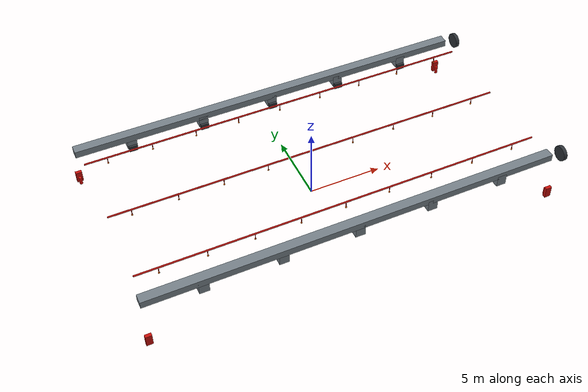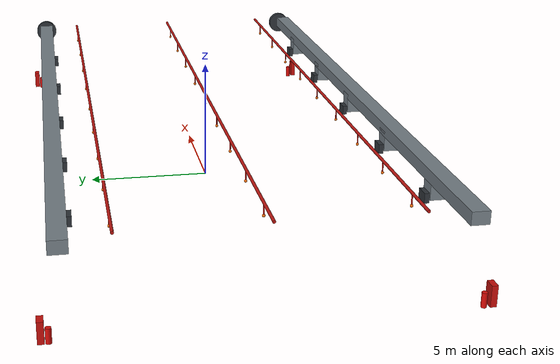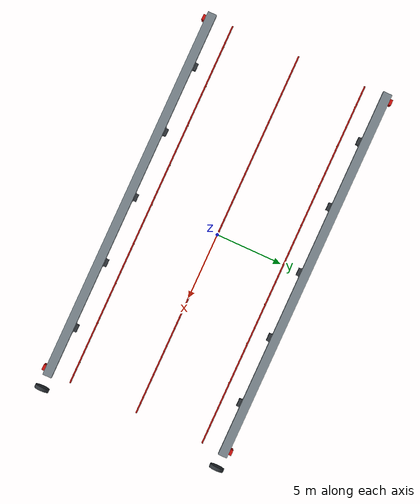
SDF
<sdf version="1.7">
 <world name="ev_car_carrier_deck_world">
  <model name="ventilation_system">
   <static>true</static>
   <link name="link">
    <collision name="main_duct_-6.65_collision">
     <pose>0.0000 -6.6500 3.4800 0.0000 0.0000 0.0000</pose>
     <geometry><box><size>27.5 0.65 0.48</size></box></geometry>
    </collision>
    <visual name="main_duct_-6.65_visual">
     <pose>0.0000 -6.6500 3.4800 0.0000 0.0000 0.0000</pose>
     <geometry><box><size>27.5 0.65 0.48</size></box></geometry>
     <material><ambient>0.46 0.5 0.53 1</ambient><diffuse>0.46 0.5 0.53 1</diffuse></material>
    </visual>
    <collision name="drop_duct_-10_-6.65_collision">
     <pose>-10.0000 -6.6500 3.0500 0.0000 0.0000 0.0000</pose>
     <geometry><box><size>0.65 0.65 0.8</size></box></geometry>
    </collision>
    <visual name="drop_duct_-10_-6.65_visual">
     <pose>-10.0000 -6.6500 3.0500 0.0000 0.0000 0.0000</pose>
     <geometry><box><size>0.65 0.65 0.8</size></box></geometry>
     <material><ambient>0.46 0.5 0.53 1</ambient><diffuse>0.46 0.5 0.53 1</diffuse></material>
    </visual>
    <visual name="vent_grille_-10_-6.65_visual">
     <pose>-10.0000 -6.2300 2.7200 0.0000 0.0000 0.0000</pose>
     <geometry><box><size>0.55 0.18 0.38</size></box></geometry>
     <material><ambient>0.18 0.2 0.22 1</ambient><diffuse>0.18 0.2 0.22 1</diffuse></material>
    </visual>
    <collision name="drop_duct_-5_-6.65_collision">
     <pose>-5.0000 -6.6500 3.0500 0.0000 0.0000 0.0000</pose>
     <geometry><box><size>0.65 0.65 0.8</size></box></geometry>
    </collision>
    <visual name="drop_duct_-5_-6.65_visual">
     <pose>-5.0000 -6.6500 3.0500 0.0000 0.0000 0.0000</pose>
     <geometry><box><size>0.65 0.65 0.8</size></box></geometry>
     <material><ambient>0.46 0.5 0.53 1</ambient><diffuse>0.46 0.5 0.53 1</diffuse></material>
    </visual>
    <visual name="vent_grille_-5_-6.65_visual">
     <pose>-5.0000 -6.2300 2.7200 0.0000 0.0000 0.0000</pose>
     <geometry><box><size>0.55 0.18 0.38</size></box></geometry>
     <material><ambient>0.18 0.2 0.22 1</ambient><diffuse>0.18 0.2 0.22 1</diffuse></material>
    </visual>
    <collision name="drop_duct_0_-6.65_collision">
     <pose>0.0000 -6.6500 3.0500 0.0000 0.0000 0.0000</pose>
     <geometry><box><size>0.65 0.65 0.8</size></box></geometry>
    </collision>
    <visual name="drop_duct_0_-6.65_visual">
     <pose>0.0000 -6.6500 3.0500 0.0000 0.0000 0.0000</pose>
     <geometry><box><size>0.65 0.65 0.8</size></box></geometry>
     <material><ambient>0.46 0.5 0.53 1</ambient><diffuse>0.46 0.5 0.53 1</diffuse></material>
    </visual>
    <visual name="vent_grille_0_-6.65_visual">
     <pose>0.0000 -6.2300 2.7200 0.0000 0.0000 0.0000</pose>
     <geometry><box><size>0.55 0.18 0.38</size></box></geometry>
     <material><ambient>0.18 0.2 0.22 1</ambient><diffuse>0.18 0.2 0.22 1</diffuse></material>
    </visual>
    <collision name="drop_duct_5_-6.65_collision">
     <pose>5.0000 -6.6500 3.0500 0.0000 0.0000 0.0000</pose>
     <geometry><box><size>0.65 0.65 0.8</size></box></geometry>
    </collision>
    <visual name="drop_duct_5_-6.65_visual">
     <pose>5.0000 -6.6500 3.0500 0.0000 0.0000 0.0000</pose>
     <geometry><box><size>0.65 0.65 0.8</size></box></geometry>
     <material><ambient>0.46 0.5 0.53 1</ambient><diffuse>0.46 0.5 0.53 1</diffuse></material>
    </visual>
    <visual name="vent_grille_5_-6.65_visual">
     <pose>5.0000 -6.2300 2.7200 0.0000 0.0000 0.0000</pose>
     <geometry><box><size>0.55 0.18 0.38</size></box></geometry>
     <material><ambient>0.18 0.2 0.22 1</ambient><diffuse>0.18 0.2 0.22 1</diffuse></material>
    </visual>
    <collision name="drop_duct_10_-6.65_collision">
     <pose>10.0000 -6.6500 3.0500 0.0000 0.0000 0.0000</pose>
     <geometry><box><size>0.65 0.65 0.8</size></box></geometry>
    </collision>
    <visual name="drop_duct_10_-6.65_visual">
     <pose>10.0000 -6.6500 3.0500 0.0000 0.0000 0.0000</pose>
     <geometry><box><size>0.65 0.65 0.8</size></box></geometry>
     <material><ambient>0.46 0.5 0.53 1</ambient><diffuse>0.46 0.5 0.53 1</diffuse></material>
    </visual>
    <visual name="vent_grille_10_-6.65_visual">
     <pose>10.0000 -6.2300 2.7200 0.0000 0.0000 0.0000</pose>
     <geometry><box><size>0.55 0.18 0.38</size></box></geometry>
     <material><ambient>0.18 0.2 0.22 1</ambient><diffuse>0.18 0.2 0.22 1</diffuse></material>
    </visual>
    <collision name="main_duct_6.65_collision">
     <pose>0.0000 6.6500 3.4800 0.0000 0.0000 0.0000</pose>
     <geometry><box><size>27.5 0.65 0.48</size></box></geometry>
    </collision>
    <visual name="main_duct_6.65_visual">
     <pose>0.0000 6.6500 3.4800 0.0000 0.0000 0.0000</pose>
     <geometry><box><size>27.5 0.65 0.48</size></box></geometry>
     <material><ambient>0.46 0.5 0.53 1</ambient><diffuse>0.46 0.5 0.53 1</diffuse></material>
    </visual>
    <collision name="drop_duct_-10_6.65_collision">
     <pose>-10.0000 6.6500 3.0500 0.0000 0.0000 0.0000</pose>
     <geometry><box><size>0.65 0.65 0.8</size></box></geometry>
    </collision>
    <visual name="drop_duct_-10_6.65_visual">
     <pose>-10.0000 6.6500 3.0500 0.0000 0.0000 0.0000</pose>
     <geometry><box><size>0.65 0.65 0.8</size></box></geometry>
     <material><ambient>0.46 0.5 0.53 1</ambient><diffuse>0.46 0.5 0.53 1</diffuse></material>
    </visual>
    <visual name="vent_grille_-10_6.65_visual">
     <pose>-10.0000 6.2300 2.7200 0.0000 0.0000 0.0000</pose>
     <geometry><box><size>0.55 0.18 0.38</size></box></geometry>
     <material><ambient>0.18 0.2 0.22 1</ambient><diffuse>0.18 0.2 0.22 1</diffuse></material>
    </visual>
    <collision name="drop_duct_-5_6.65_collision">
     <pose>-5.0000 6.6500 3.0500 0.0000 0.0000 0.0000</pose>
     <geometry><box><size>0.65 0.65 0.8</size></box></geometry>
    </collision>
    <visual name="drop_duct_-5_6.65_visual">
     <pose>-5.0000 6.6500 3.0500 0.0000 0.0000 0.0000</pose>
     <geometry><box><size>0.65 0.65 0.8</size></box></geometry>
     <material><ambient>0.46 0.5 0.53 1</ambient><diffuse>0.46 0.5 0.53 1</diffuse></material>
    </visual>
    <visual name="vent_grille_-5_6.65_visual">
     <pose>-5.0000 6.2300 2.7200 0.0000 0.0000 0.0000</pose>
     <geometry><box><size>0.55 0.18 0.38</size></box></geometry>
     <material><ambient>0.18 0.2 0.22 1</ambient><diffuse>0.18 0.2 0.22 1</diffuse></material>
    </visual>
    <collision name="drop_duct_0_6.65_collision">
     <pose>0.0000 6.6500 3.0500 0.0000 0.0000 0.0000</pose>
     <geometry><box><size>0.65 0.65 0.8</size></box></geometry>
    </collision>
    <visual name="drop_duct_0_6.65_visual">
     <pose>0.0000 6.6500 3.0500 0.0000 0.0000 0.0000</pose>
     <geometry><box><size>0.65 0.65 0.8</size></box></geometry>
     <material><ambient>0.46 0.5 0.53 1</ambient><diffuse>0.46 0.5 0.53 1</diffuse></material>
    </visual>
    <visual name="vent_grille_0_6.65_visual">
     <pose>0.0000 6.2300 2.7200 0.0000 0.0000 0.0000</pose>
     <geometry><box><size>0.55 0.18 0.38</size></box></geometry>
     <material><ambient>0.18 0.2 0.22 1</ambient><diffuse>0.18 0.2 0.22 1</diffuse></material>
    </visual>
    <collision name="drop_duct_5_6.65_collision">
     <pose>5.0000 6.6500 3.0500 0.0000 0.0000 0.0000</pose>
     <geometry><box><size>0.65 0.65 0.8</size></box></geometry>
    </collision>
    <visual name="drop_duct_5_6.65_visual">
     <pose>5.0000 6.6500 3.0500 0.0000 0.0000 0.0000</pose>
     <geometry><box><size>0.65 0.65 0.8</size></box></geometry>
     <material><ambient>0.46 0.5 0.53 1</ambient><diffuse>0.46 0.5 0.53 1</diffuse></material>
    </visual>
    <visual name="vent_grille_5_6.65_visual">
     <pose>5.0000 6.2300 2.7200 0.0000 0.0000 0.0000</pose>
     <geometry><box><size>0.55 0.18 0.38</size></box></geometry>
     <material><ambient>0.18 0.2 0.22 1</ambient><diffuse>0.18 0.2 0.22 1</diffuse></material>
    </visual>
    <collision name="drop_duct_10_6.65_collision">
     <pose>10.0000 6.6500 3.0500 0.0000 0.0000 0.0000</pose>
     <geometry><box><size>0.65 0.65 0.8</size></box></geometry>
    </collision>
    <visual name="drop_duct_10_6.65_visual">
     <pose>10.0000 6.6500 3.0500 0.0000 0.0000 0.0000</pose>
     <geometry><box><size>0.65 0.65 0.8</size></box></geometry>
     <material><ambient>0.46 0.5 0.53 1</ambient><diffuse>0.46 0.5 0.53 1</diffuse></material>
    </visual>
    <visual name="vent_grille_10_6.65_visual">
     <pose>10.0000 6.2300 2.7200 0.0000 0.0000 0.0000</pose>
     <geometry><box><size>0.55 0.18 0.38</size></box></geometry>
     <material><ambient>0.18 0.2 0.22 1</ambient><diffuse>0.18 0.2 0.22 1</diffuse></material>
    </visual>
    <collision name="extract_fan_-6.65_collision">
     <pose>14.7200 -6.6500 3.2200 0.0000 1.5708 0.0000</pose>
     <geometry><cylinder><radius>0.52</radius><length>0.25</length></cylinder></geometry>
    </collision>
    <visual name="extract_fan_-6.65_visual">
     <pose>14.7200 -6.6500 3.2200 0.0000 1.5708 0.0000</pose>
     <geometry><cylinder><radius>0.52</radius><length>0.25</length></cylinder></geometry>
     <material><ambient>0.18 0.2 0.22 1</ambient><diffuse>0.18 0.2 0.22 1</diffuse></material>
    </visual>
    <collision name="extract_fan_6.65_collision">
     <pose>14.7200 6.6500 3.2200 0.0000 1.5708 0.0000</pose>
     <geometry><cylinder><radius>0.52</radius><length>0.25</length></cylinder></geometry>
    </collision>
    <visual name="extract_fan_6.65_visual">
     <pose>14.7200 6.6500 3.2200 0.0000 1.5708 0.0000</pose>
     <geometry><cylinder><radius>0.52</radius><length>0.25</length></cylinder></geometry>
     <material><ambient>0.18 0.2 0.22 1</ambient><diffuse>0.18 0.2 0.22 1</diffuse></material>
    </visual>
   </link>
  </model>
  <model name="fire_suppression">
   <static>true</static>
   <link name="link">
    <collision name="fire_main_-5.0_collision">
     <pose>0.0000 -5.0000 3.7200 0.0000 1.5708 0.0000</pose>
     <geometry><cylinder><radius>0.055</radius><length>27.0</length></cylinder></geometry>
    </collision>
    <visual name="fire_main_-5.0_visual">
     <pose>0.0000 -5.0000 3.7200 0.0000 1.5708 0.0000</pose>
     <geometry><cylinder><radius>0.055</radius><length>27.0</length></cylinder></geometry>
     <material><ambient>0.72 0.08 0.06 1</ambient><diffuse>0.72 0.08 0.06 1</diffuse></material>
    </visual>
    <collision name="drop_-12_-5.0_collision">
     <pose>-12.0000 -5.0000 3.4800 0.0000 0.0000 0.0000</pose>
     <geometry><cylinder><radius>0.024</radius><length>0.35</length></cylinder></geometry>
    </collision>
    <visual name="drop_-12_-5.0_visual">
     <pose>-12.0000 -5.0000 3.4800 0.0000 0.0000 0.0000</pose>
     <geometry><cylinder><radius>0.024</radius><length>0.35</length></cylinder></geometry>
     <material><ambient>0.72 0.08 0.06 1</ambient><diffuse>0.72 0.08 0.06 1</diffuse></material>
    </visual>
    <visual name="mist_nozzle_-12_-5.0_visual">
     <pose>-12.0000 -5.0000 3.2700 0.0000 0.0000 0.0000</pose>
     <geometry><sphere><radius>0.055</radius></sphere></geometry>
     <material><ambient>0.92 0.42 0.06 1</ambient><diffuse>0.92 0.42 0.06 1</diffuse></material>
    </visual>
    <collision name="drop_-9_-5.0_collision">
     <pose>-9.0000 -5.0000 3.4800 0.0000 0.0000 0.0000</pose>
     <geometry><cylinder><radius>0.024</radius><length>0.35</length></cylinder></geometry>
    </collision>
    <visual name="drop_-9_-5.0_visual">
     <pose>-9.0000 -5.0000 3.4800 0.0000 0.0000 0.0000</pose>
     <geometry><cylinder><radius>0.024</radius><length>0.35</length></cylinder></geometry>
     <material><ambient>0.72 0.08 0.06 1</ambient><diffuse>0.72 0.08 0.06 1</diffuse></material>
    </visual>
    <visual name="mist_nozzle_-9_-5.0_visual">
     <pose>-9.0000 -5.0000 3.2700 0.0000 0.0000 0.0000</pose>
     <geometry><sphere><radius>0.055</radius></sphere></geometry>
     <material><ambient>0.92 0.42 0.06 1</ambient><diffuse>0.92 0.42 0.06 1</diffuse></material>
    </visual>
    <collision name="drop_-6_-5.0_collision">
     <pose>-6.0000 -5.0000 3.4800 0.0000 0.0000 0.0000</pose>
     <geometry><cylinder><radius>0.024</radius><length>0.35</length></cylinder></geometry>
    </collision>
    <visual name="drop_-6_-5.0_visual">
     <pose>-6.0000 -5.0000 3.4800 0.0000 0.0000 0.0000</pose>
     <geometry><cylinder><radius>0.024</radius><length>0.35</length></cylinder></geometry>
     <material><ambient>0.72 0.08 0.06 1</ambient><diffuse>0.72 0.08 0.06 1</diffuse></material>
    </visual>
    <visual name="mist_nozzle_-6_-5.0_visual">
     <pose>-6.0000 -5.0000 3.2700 0.0000 0.0000 0.0000</pose>
     <geometry><sphere><radius>0.055</radius></sphere></geometry>
     <material><ambient>0.92 0.42 0.06 1</ambient><diffuse>0.92 0.42 0.06 1</diffuse></material>
    </visual>
    <collision name="drop_-3_-5.0_collision">
     <pose>-3.0000 -5.0000 3.4800 0.0000 0.0000 0.0000</pose>
     <geometry><cylinder><radius>0.024</radius><length>0.35</length></cylinder></geometry>
    </collision>
    <visual name="drop_-3_-5.0_visual">
     <pose>-3.0000 -5.0000 3.4800 0.0000 0.0000 0.0000</pose>
     <geometry><cylinder><radius>0.024</radius><length>0.35</length></cylinder></geometry>
     <material><ambient>0.72 0.08 0.06 1</ambient><diffuse>0.72 0.08 0.06 1</diffuse></material>
    </visual>
    <visual name="mist_nozzle_-3_-5.0_visual">
     <pose>-3.0000 -5.0000 3.2700 0.0000 0.0000 0.0000</pose>
     <geometry><sphere><radius>0.055</radius></sphere></geometry>
     <material><ambient>0.92 0.42 0.06 1</ambient><diffuse>0.92 0.42 0.06 1</diffuse></material>
    </visual>
    <collision name="drop_0_-5.0_collision">
     <pose>0.0000 -5.0000 3.4800 0.0000 0.0000 0.0000</pose>
     <geometry><cylinder><radius>0.024</radius><length>0.35</length></cylinder></geometry>
    </collision>
    <visual name="drop_0_-5.0_visual">
     <pose>0.0000 -5.0000 3.4800 0.0000 0.0000 0.0000</pose>
     <geometry><cylinder><radius>0.024</radius><length>0.35</length></cylinder></geometry>
     <material><ambient>0.72 0.08 0.06 1</ambient><diffuse>0.72 0.08 0.06 1</diffuse></material>
    </visual>
    <visual name="mist_nozzle_0_-5.0_visual">
     <pose>0.0000 -5.0000 3.2700 0.0000 0.0000 0.0000</pose>
     <geometry><sphere><radius>0.055</radius></sphere></geometry>
     <material><ambient>0.92 0.42 0.06 1</ambient><diffuse>0.92 0.42 0.06 1</diffuse></material>
    </visual>
    <collision name="drop_3_-5.0_collision">
     <pose>3.0000 -5.0000 3.4800 0.0000 0.0000 0.0000</pose>
     <geometry><cylinder><radius>0.024</radius><length>0.35</length></cylinder></geometry>
    </collision>
    <visual name="drop_3_-5.0_visual">
     <pose>3.0000 -5.0000 3.4800 0.0000 0.0000 0.0000</pose>
     <geometry><cylinder><radius>0.024</radius><length>0.35</length></cylinder></geometry>
     <material><ambient>0.72 0.08 0.06 1</ambient><diffuse>0.72 0.08 0.06 1</diffuse></material>
    </visual>
    <visual name="mist_nozzle_3_-5.0_visual">
     <pose>3.0000 -5.0000 3.2700 0.0000 0.0000 0.0000</pose>
     <geometry><sphere><radius>0.055</radius></sphere></geometry>
     <material><ambient>0.92 0.42 0.06 1</ambient><diffuse>0.92 0.42 0.06 1</diffuse></material>
    </visual>
    <collision name="drop_6_-5.0_collision">
     <pose>6.0000 -5.0000 3.4800 0.0000 0.0000 0.0000</pose>
     <geometry><cylinder><radius>0.024</radius><length>0.35</length></cylinder></geometry>
    </collision>
    <visual name="drop_6_-5.0_visual">
     <pose>6.0000 -5.0000 3.4800 0.0000 0.0000 0.0000</pose>
     <geometry><cylinder><radius>0.024</radius><length>0.35</length></cylinder></geometry>
     <material><ambient>0.72 0.08 0.06 1</ambient><diffuse>0.72 0.08 0.06 1</diffuse></material>
    </visual>
    <visual name="mist_nozzle_6_-5.0_visual">
     <pose>6.0000 -5.0000 3.2700 0.0000 0.0000 0.0000</pose>
     <geometry><sphere><radius>0.055</radius></sphere></geometry>
     <material><ambient>0.92 0.42 0.06 1</ambient><diffuse>0.92 0.42 0.06 1</diffuse></material>
    </visual>
    <collision name="drop_9_-5.0_collision">
     <pose>9.0000 -5.0000 3.4800 0.0000 0.0000 0.0000</pose>
     <geometry><cylinder><radius>0.024</radius><length>0.35</length></cylinder></geometry>
    </collision>
    <visual name="drop_9_-5.0_visual">
     <pose>9.0000 -5.0000 3.4800 0.0000 0.0000 0.0000</pose>
     <geometry><cylinder><radius>0.024</radius><length>0.35</length></cylinder></geometry>
     <material><ambient>0.72 0.08 0.06 1</ambient><diffuse>0.72 0.08 0.06 1</diffuse></material>
    </visual>
    <visual name="mist_nozzle_9_-5.0_visual">
     <pose>9.0000 -5.0000 3.2700 0.0000 0.0000 0.0000</pose>
     <geometry><sphere><radius>0.055</radius></sphere></geometry>
     <material><ambient>0.92 0.42 0.06 1</ambient><diffuse>0.92 0.42 0.06 1</diffuse></material>
    </visual>
    <collision name="drop_12_-5.0_collision">
     <pose>12.0000 -5.0000 3.4800 0.0000 0.0000 0.0000</pose>
     <geometry><cylinder><radius>0.024</radius><length>0.35</length></cylinder></geometry>
    </collision>
    <visual name="drop_12_-5.0_visual">
     <pose>12.0000 -5.0000 3.4800 0.0000 0.0000 0.0000</pose>
     <geometry><cylinder><radius>0.024</radius><length>0.35</length></cylinder></geometry>
     <material><ambient>0.72 0.08 0.06 1</ambient><diffuse>0.72 0.08 0.06 1</diffuse></material>
    </visual>
    <visual name="mist_nozzle_12_-5.0_visual">
     <pose>12.0000 -5.0000 3.2700 0.0000 0.0000 0.0000</pose>
     <geometry><sphere><radius>0.055</radius></sphere></geometry>
     <material><ambient>0.92 0.42 0.06 1</ambient><diffuse>0.92 0.42 0.06 1</diffuse></material>
    </visual>
    <collision name="fire_main_0_collision">
     <pose>0.0000 0.0000 3.7200 0.0000 1.5708 0.0000</pose>
     <geometry><cylinder><radius>0.055</radius><length>27.0</length></cylinder></geometry>
    </collision>
    <visual name="fire_main_0_visual">
     <pose>0.0000 0.0000 3.7200 0.0000 1.5708 0.0000</pose>
     <geometry><cylinder><radius>0.055</radius><length>27.0</length></cylinder></geometry>
     <material><ambient>0.72 0.08 0.06 1</ambient><diffuse>0.72 0.08 0.06 1</diffuse></material>
    </visual>
    <collision name="drop_-12_0_collision">
     <pose>-12.0000 0.0000 3.4800 0.0000 0.0000 0.0000</pose>
     <geometry><cylinder><radius>0.024</radius><length>0.35</length></cylinder></geometry>
    </collision>
    <visual name="drop_-12_0_visual">
     <pose>-12.0000 0.0000 3.4800 0.0000 0.0000 0.0000</pose>
     <geometry><cylinder><radius>0.024</radius><length>0.35</length></cylinder></geometry>
     <material><ambient>0.72 0.08 0.06 1</ambient><diffuse>0.72 0.08 0.06 1</diffuse></material>
    </visual>
    <visual name="mist_nozzle_-12_0_visual">
     <pose>-12.0000 0.0000 3.2700 0.0000 0.0000 0.0000</pose>
     <geometry><sphere><radius>0.055</radius></sphere></geometry>
     <material><ambient>0.92 0.42 0.06 1</ambient><diffuse>0.92 0.42 0.06 1</diffuse></material>
    </visual>
    <collision name="drop_-9_0_collision">
     <pose>-9.0000 0.0000 3.4800 0.0000 0.0000 0.0000</pose>
     <geometry><cylinder><radius>0.024</radius><length>0.35</length></cylinder></geometry>
    </collision>
    <visual name="drop_-9_0_visual">
     <pose>-9.0000 0.0000 3.4800 0.0000 0.0000 0.0000</pose>
     <geometry><cylinder><radius>0.024</radius><length>0.35</length></cylinder></geometry>
     <material><ambient>0.72 0.08 0.06 1</ambient><diffuse>0.72 0.08 0.06 1</diffuse></material>
    </visual>
    <visual name="mist_nozzle_-9_0_visual">
     <pose>-9.0000 0.0000 3.2700 0.0000 0.0000 0.0000</pose>
     <geometry><sphere><radius>0.055</radius></sphere></geometry>
     <material><ambient>0.92 0.42 0.06 1</ambient><diffuse>0.92 0.42 0.06 1</diffuse></material>
    </visual>
    <collision name="drop_-6_0_collision">
     <pose>-6.0000 0.0000 3.4800 0.0000 0.0000 0.0000</pose>
     <geometry><cylinder><radius>0.024</radius><length>0.35</length></cylinder></geometry>
    </collision>
    <visual name="drop_-6_0_visual">
     <pose>-6.0000 0.0000 3.4800 0.0000 0.0000 0.0000</pose>
     <geometry><cylinder><radius>0.024</radius><length>0.35</length></cylinder></geometry>
     <material><ambient>0.72 0.08 0.06 1</ambient><diffuse>0.72 0.08 0.06 1</diffuse></material>
    </visual>
    <visual name="mist_nozzle_-6_0_visual">
     <pose>-6.0000 0.0000 3.2700 0.0000 0.0000 0.0000</pose>
     <geometry><sphere><radius>0.055</radius></sphere></geometry>
     <material><ambient>0.92 0.42 0.06 1</ambient><diffuse>0.92 0.42 0.06 1</diffuse></material>
    </visual>
    <collision name="drop_-3_0_collision">
     <pose>-3.0000 0.0000 3.4800 0.0000 0.0000 0.0000</pose>
     <geometry><cylinder><radius>0.024</radius><length>0.35</length></cylinder></geometry>
    </collision>
    <visual name="drop_-3_0_visual">
     <pose>-3.0000 0.0000 3.4800 0.0000 0.0000 0.0000</pose>
     <geometry><cylinder><radius>0.024</radius><length>0.35</length></cylinder></geometry>
     <material><ambient>0.72 0.08 0.06 1</ambient><diffuse>0.72 0.08 0.06 1</diffuse></material>
    </visual>
    <visual name="mist_nozzle_-3_0_visual">
     <pose>-3.0000 0.0000 3.2700 0.0000 0.0000 0.0000</pose>
     <geometry><sphere><radius>0.055</radius></sphere></geometry>
     <material><ambient>0.92 0.42 0.06 1</ambient><diffuse>0.92 0.42 0.06 1</diffuse></material>
    </visual>
    <collision name="drop_0_0_collision">
     <pose>0.0000 0.0000 3.4800 0.0000 0.0000 0.0000</pose>
     <geometry><cylinder><radius>0.024</radius><length>0.35</length></cylinder></geometry>
    </collision>
    <visual name="drop_0_0_visual">
     <pose>0.0000 0.0000 3.4800 0.0000 0.0000 0.0000</pose>
     <geometry><cylinder><radius>0.024</radius><length>0.35</length></cylinder></geometry>
     <material><ambient>0.72 0.08 0.06 1</ambient><diffuse>0.72 0.08 0.06 1</diffuse></material>
    </visual>
    <visual name="mist_nozzle_0_0_visual">
     <pose>0.0000 0.0000 3.2700 0.0000 0.0000 0.0000</pose>
     <geometry><sphere><radius>0.055</radius></sphere></geometry>
     <material><ambient>0.92 0.42 0.06 1</ambient><diffuse>0.92 0.42 0.06 1</diffuse></material>
    </visual>
    <collision name="drop_3_0_collision">
     <pose>3.0000 0.0000 3.4800 0.0000 0.0000 0.0000</pose>
     <geometry><cylinder><radius>0.024</radius><length>0.35</length></cylinder></geometry>
    </collision>
    <visual name="drop_3_0_visual">
     <pose>3.0000 0.0000 3.4800 0.0000 0.0000 0.0000</pose>
     <geometry><cylinder><radius>0.024</radius><length>0.35</length></cylinder></geometry>
     <material><ambient>0.72 0.08 0.06 1</ambient><diffuse>0.72 0.08 0.06 1</diffuse></material>
    </visual>
    <visual name="mist_nozzle_3_0_visual">
     <pose>3.0000 0.0000 3.2700 0.0000 0.0000 0.0000</pose>
     <geometry><sphere><radius>0.055</radius></sphere></geometry>
     <material><ambient>0.92 0.42 0.06 1</ambient><diffuse>0.92 0.42 0.06 1</diffuse></material>
    </visual>
    <collision name="drop_6_0_collision">
     <pose>6.0000 0.0000 3.4800 0.0000 0.0000 0.0000</pose>
     <geometry><cylinder><radius>0.024</radius><length>0.35</length></cylinder></geometry>
    </collision>
    <visual name="drop_6_0_visual">
     <pose>6.0000 0.0000 3.4800 0.0000 0.0000 0.0000</pose>
     <geometry><cylinder><radius>0.024</radius><length>0.35</length></cylinder></geometry>
     <material><ambient>0.72 0.08 0.06 1</ambient><diffuse>0.72 0.08 0.06 1</diffuse></material>
    </visual>
    <visual name="mist_nozzle_6_0_visual">
     <pose>6.0000 0.0000 3.2700 0.0000 0.0000 0.0000</pose>
     <geometry><sphere><radius>0.055</radius></sphere></geometry>
     <material><ambient>0.92 0.42 0.06 1</ambient><diffuse>0.92 0.42 0.06 1</diffuse></material>
    </visual>
    <collision name="drop_9_0_collision">
     <pose>9.0000 0.0000 3.4800 0.0000 0.0000 0.0000</pose>
     <geometry><cylinder><radius>0.024</radius><length>0.35</length></cylinder></geometry>
    </collision>
    <visual name="drop_9_0_visual">
     <pose>9.0000 0.0000 3.4800 0.0000 0.0000 0.0000</pose>
     <geometry><cylinder><radius>0.024</radius><length>0.35</length></cylinder></geometry>
     <material><ambient>0.72 0.08 0.06 1</ambient><diffuse>0.72 0.08 0.06 1</diffuse></material>
    </visual>
    <visual name="mist_nozzle_9_0_visual">
     <pose>9.0000 0.0000 3.2700 0.0000 0.0000 0.0000</pose>
     <geometry><sphere><radius>0.055</radius></sphere></geometry>
     <material><ambient>0.92 0.42 0.06 1</ambient><diffuse>0.92 0.42 0.06 1</diffuse></material>
    </visual>
    <collision name="drop_12_0_collision">
     <pose>12.0000 0.0000 3.4800 0.0000 0.0000 0.0000</pose>
     <geometry><cylinder><radius>0.024</radius><length>0.35</length></cylinder></geometry>
    </collision>
    <visual name="drop_12_0_visual">
     <pose>12.0000 0.0000 3.4800 0.0000 0.0000 0.0000</pose>
     <geometry><cylinder><radius>0.024</radius><length>0.35</length></cylinder></geometry>
     <material><ambient>0.72 0.08 0.06 1</ambient><diffuse>0.72 0.08 0.06 1</diffuse></material>
    </visual>
    <visual name="mist_nozzle_12_0_visual">
     <pose>12.0000 0.0000 3.2700 0.0000 0.0000 0.0000</pose>
     <geometry><sphere><radius>0.055</radius></sphere></geometry>
     <material><ambient>0.92 0.42 0.06 1</ambient><diffuse>0.92 0.42 0.06 1</diffuse></material>
    </visual>
    <collision name="fire_main_5.0_collision">
     <pose>0.0000 5.0000 3.7200 0.0000 1.5708 0.0000</pose>
     <geometry><cylinder><radius>0.055</radius><length>27.0</length></cylinder></geometry>
    </collision>
    <visual name="fire_main_5.0_visual">
     <pose>0.0000 5.0000 3.7200 0.0000 1.5708 0.0000</pose>
     <geometry><cylinder><radius>0.055</radius><length>27.0</length></cylinder></geometry>
     <material><ambient>0.72 0.08 0.06 1</ambient><diffuse>0.72 0.08 0.06 1</diffuse></material>
    </visual>
    <collision name="drop_-12_5.0_collision">
     <pose>-12.0000 5.0000 3.4800 0.0000 0.0000 0.0000</pose>
     <geometry><cylinder><radius>0.024</radius><length>0.35</length></cylinder></geometry>
    </collision>
    <visual name="drop_-12_5.0_visual">
     <pose>-12.0000 5.0000 3.4800 0.0000 0.0000 0.0000</pose>
     <geometry><cylinder><radius>0.024</radius><length>0.35</length></cylinder></geometry>
     <material><ambient>0.72 0.08 0.06 1</ambient><diffuse>0.72 0.08 0.06 1</diffuse></material>
    </visual>
    <visual name="mist_nozzle_-12_5.0_visual">
     <pose>-12.0000 5.0000 3.2700 0.0000 0.0000 0.0000</pose>
     <geometry><sphere><radius>0.055</radius></sphere></geometry>
     <material><ambient>0.92 0.42 0.06 1</ambient><diffuse>0.92 0.42 0.06 1</diffuse></material>
    </visual>
    <collision name="drop_-9_5.0_collision">
     <pose>-9.0000 5.0000 3.4800 0.0000 0.0000 0.0000</pose>
     <geometry><cylinder><radius>0.024</radius><length>0.35</length></cylinder></geometry>
    </collision>
    <visual name="drop_-9_5.0_visual">
     <pose>-9.0000 5.0000 3.4800 0.0000 0.0000 0.0000</pose>
     <geometry><cylinder><radius>0.024</radius><length>0.35</length></cylinder></geometry>
     <material><ambient>0.72 0.08 0.06 1</ambient><diffuse>0.72 0.08 0.06 1</diffuse></material>
    </visual>
    <visual name="mist_nozzle_-9_5.0_visual">
     <pose>-9.0000 5.0000 3.2700 0.0000 0.0000 0.0000</pose>
     <geometry><sphere><radius>0.055</radius></sphere></geometry>
     <material><ambient>0.92 0.42 0.06 1</ambient><diffuse>0.92 0.42 0.06 1</diffuse></material>
    </visual>
    <collision name="drop_-6_5.0_collision">
     <pose>-6.0000 5.0000 3.4800 0.0000 0.0000 0.0000</pose>
     <geometry><cylinder><radius>0.024</radius><length>0.35</length></cylinder></geometry>
    </collision>
    <visual name="drop_-6_5.0_visual">
     <pose>-6.0000 5.0000 3.4800 0.0000 0.0000 0.0000</pose>
     <geometry><cylinder><radius>0.024</radius><length>0.35</length></cylinder></geometry>
     <material><ambient>0.72 0.08 0.06 1</ambient><diffuse>0.72 0.08 0.06 1</diffuse></material>
    </visual>
    <visual name="mist_nozzle_-6_5.0_visual">
     <pose>-6.0000 5.0000 3.2700 0.0000 0.0000 0.0000</pose>
     <geometry><sphere><radius>0.055</radius></sphere></geometry>
     <material><ambient>0.92 0.42 0.06 1</ambient><diffuse>0.92 0.42 0.06 1</diffuse></material>
    </visual>
    <collision name="drop_-3_5.0_collision">
     <pose>-3.0000 5.0000 3.4800 0.0000 0.0000 0.0000</pose>
     <geometry><cylinder><radius>0.024</radius><length>0.35</length></cylinder></geometry>
    </collision>
    <visual name="drop_-3_5.0_visual">
     <pose>-3.0000 5.0000 3.4800 0.0000 0.0000 0.0000</pose>
     <geometry><cylinder><radius>0.024</radius><length>0.35</length></cylinder></geometry>
     <material><ambient>0.72 0.08 0.06 1</ambient><diffuse>0.72 0.08 0.06 1</diffuse></material>
    </visual>
    <visual name="mist_nozzle_-3_5.0_visual">
     <pose>-3.0000 5.0000 3.2700 0.0000 0.0000 0.0000</pose>
     <geometry><sphere><radius>0.055</radius></sphere></geometry>
     <material><ambient>0.92 0.42 0.06 1</ambient><diffuse>0.92 0.42 0.06 1</diffuse></material>
    </visual>
    <collision name="drop_0_5.0_collision">
     <pose>0.0000 5.0000 3.4800 0.0000 0.0000 0.0000</pose>
     <geometry><cylinder><radius>0.024</radius><length>0.35</length></cylinder></geometry>
    </collision>
    <visual name="drop_0_5.0_visual">
     <pose>0.0000 5.0000 3.4800 0.0000 0.0000 0.0000</pose>
     <geometry><cylinder><radius>0.024</radius><length>0.35</length></cylinder></geometry>
     <material><ambient>0.72 0.08 0.06 1</ambient><diffuse>0.72 0.08 0.06 1</diffuse></material>
    </visual>
    <visual name="mist_nozzle_0_5.0_visual">
     <pose>0.0000 5.0000 3.2700 0.0000 0.0000 0.0000</pose>
     <geometry><sphere><radius>0.055</radius></sphere></geometry>
     <material><ambient>0.92 0.42 0.06 1</ambient><diffuse>0.92 0.42 0.06 1</diffuse></material>
    </visual>
    <collision name="drop_3_5.0_collision">
     <pose>3.0000 5.0000 3.4800 0.0000 0.0000 0.0000</pose>
     <geometry><cylinder><radius>0.024</radius><length>0.35</length></cylinder></geometry>
    </collision>
    <visual name="drop_3_5.0_visual">
     <pose>3.0000 5.0000 3.4800 0.0000 0.0000 0.0000</pose>
     <geometry><cylinder><radius>0.024</radius><length>0.35</length></cylinder></geometry>
     <material><ambient>0.72 0.08 0.06 1</ambient><diffuse>0.72 0.08 0.06 1</diffuse></material>
    </visual>
    <visual name="mist_nozzle_3_5.0_visual">
     <pose>3.0000 5.0000 3.2700 0.0000 0.0000 0.0000</pose>
     <geometry><sphere><radius>0.055</radius></sphere></geometry>
     <material><ambient>0.92 0.42 0.06 1</ambient><diffuse>0.92 0.42 0.06 1</diffuse></material>
    </visual>
    <collision name="drop_6_5.0_collision">
     <pose>6.0000 5.0000 3.4800 0.0000 0.0000 0.0000</pose>
     <geometry><cylinder><radius>0.024</radius><length>0.35</length></cylinder></geometry>
    </collision>
    <visual name="drop_6_5.0_visual">
     <pose>6.0000 5.0000 3.4800 0.0000 0.0000 0.0000</pose>
     <geometry><cylinder><radius>0.024</radius><length>0.35</length></cylinder></geometry>
     <material><ambient>0.72 0.08 0.06 1</ambient><diffuse>0.72 0.08 0.06 1</diffuse></material>
    </visual>
    <visual name="mist_nozzle_6_5.0_visual">
     <pose>6.0000 5.0000 3.2700 0.0000 0.0000 0.0000</pose>
     <geometry><sphere><radius>0.055</radius></sphere></geometry>
     <material><ambient>0.92 0.42 0.06 1</ambient><diffuse>0.92 0.42 0.06 1</diffuse></material>
    </visual>
    <collision name="drop_9_5.0_collision">
     <pose>9.0000 5.0000 3.4800 0.0000 0.0000 0.0000</pose>
     <geometry><cylinder><radius>0.024</radius><length>0.35</length></cylinder></geometry>
    </collision>
    <visual name="drop_9_5.0_visual">
     <pose>9.0000 5.0000 3.4800 0.0000 0.0000 0.0000</pose>
     <geometry><cylinder><radius>0.024</radius><length>0.35</length></cylinder></geometry>
     <material><ambient>0.72 0.08 0.06 1</ambient><diffuse>0.72 0.08 0.06 1</diffuse></material>
    </visual>
    <visual name="mist_nozzle_9_5.0_visual">
     <pose>9.0000 5.0000 3.2700 0.0000 0.0000 0.0000</pose>
     <geometry><sphere><radius>0.055</radius></sphere></geometry>
     <material><ambient>0.92 0.42 0.06 1</ambient><diffuse>0.92 0.42 0.06 1</diffuse></material>
    </visual>
    <collision name="drop_12_5.0_collision">
     <pose>12.0000 5.0000 3.4800 0.0000 0.0000 0.0000</pose>
     <geometry><cylinder><radius>0.024</radius><length>0.35</length></cylinder></geometry>
    </collision>
    <visual name="drop_12_5.0_visual">
     <pose>12.0000 5.0000 3.4800 0.0000 0.0000 0.0000</pose>
     <geometry><cylinder><radius>0.024</radius><length>0.35</length></cylinder></geometry>
     <material><ambient>0.72 0.08 0.06 1</ambient><diffuse>0.72 0.08 0.06 1</diffuse></material>
    </visual>
    <visual name="mist_nozzle_12_5.0_visual">
     <pose>12.0000 5.0000 3.2700 0.0000 0.0000 0.0000</pose>
     <geometry><sphere><radius>0.055</radius></sphere></geometry>
     <material><ambient>0.92 0.42 0.06 1</ambient><diffuse>0.92 0.42 0.06 1</diffuse></material>
    </visual>
    <collision name="fire_cabinet_-13.7_7.3_collision">
     <pose>-13.7000 7.3000 0.7200 0.0000 0.0000 0.0000</pose>
     <geometry><box><size>0.42 0.22 0.78</size></box></geometry>
    </collision>
    <visual name="fire_cabinet_-13.7_7.3_visual">
     <pose>-13.7000 7.3000 0.7200 0.0000 0.0000 0.0000</pose>
     <geometry><box><size>0.42 0.22 0.78</size></box></geometry>
     <material><ambient>0.78 0.06 0.04 1</ambient><diffuse>0.78 0.06 0.04 1</diffuse></material>
    </visual>
    <collision name="extinguisher_-13.7_7.3_collision">
     <pose>-13.7000 7.0600 0.5200 0.0000 0.0000 0.0000</pose>
     <geometry><cylinder><radius>0.1</radius><length>0.54</length></cylinder></geometry>
    </collision>
    <visual name="extinguisher_-13.7_7.3_visual">
     <pose>-13.7000 7.0600 0.5200 0.0000 0.0000 0.0000</pose>
     <geometry><cylinder><radius>0.1</radius><length>0.54</length></cylinder></geometry>
     <material><ambient>0.85 0.05 0.03 1</ambient><diffuse>0.85 0.05 0.03 1</diffuse></material>
    </visual>
    <collision name="fire_cabinet_-13.7_-7.3_collision">
     <pose>-13.7000 -7.3000 0.7200 0.0000 0.0000 0.0000</pose>
     <geometry><box><size>0.42 0.22 0.78</size></box></geometry>
    </collision>
    <visual name="fire_cabinet_-13.7_-7.3_visual">
     <pose>-13.7000 -7.3000 0.7200 0.0000 0.0000 0.0000</pose>
     <geometry><box><size>0.42 0.22 0.78</size></box></geometry>
     <material><ambient>0.78 0.06 0.04 1</ambient><diffuse>0.78 0.06 0.04 1</diffuse></material>
    </visual>
    <collision name="extinguisher_-13.7_-7.3_collision">
     <pose>-13.7000 -7.0600 0.5200 0.0000 0.0000 0.0000</pose>
     <geometry><cylinder><radius>0.1</radius><length>0.54</length></cylinder></geometry>
    </collision>
    <visual name="extinguisher_-13.7_-7.3_visual">
     <pose>-13.7000 -7.0600 0.5200 0.0000 0.0000 0.0000</pose>
     <geometry><cylinder><radius>0.1</radius><length>0.54</length></cylinder></geometry>
     <material><ambient>0.85 0.05 0.03 1</ambient><diffuse>0.85 0.05 0.03 1</diffuse></material>
    </visual>
    <collision name="fire_cabinet_13.7_7.3_collision">
     <pose>13.7000 7.3000 0.7200 0.0000 0.0000 0.0000</pose>
     <geometry><box><size>0.42 0.22 0.78</size></box></geometry>
    </collision>
    <visual name="fire_cabinet_13.7_7.3_visual">
     <pose>13.7000 7.3000 0.7200 0.0000 0.0000 0.0000</pose>
     <geometry><box><size>0.42 0.22 0.78</size></box></geometry>
     <material><ambient>0.78 0.06 0.04 1</ambient><diffuse>0.78 0.06 0.04 1</diffuse></material>
    </visual>
    <collision name="extinguisher_13.7_7.3_collision">
     <pose>13.7000 7.0600 0.5200 0.0000 0.0000 0.0000</pose>
     <geometry><cylinder><radius>0.1</radius><length>0.54</length></cylinder></geometry>
    </collision>
    <visual name="extinguisher_13.7_7.3_visual">
     <pose>13.7000 7.0600 0.5200 0.0000 0.0000 0.0000</pose>
     <geometry><cylinder><radius>0.1</radius><length>0.54</length></cylinder></geometry>
     <material><ambient>0.85 0.05 0.03 1</ambient><diffuse>0.85 0.05 0.03 1</diffuse></material>
    </visual>
    <collision name="fire_cabinet_13.7_-7.3_collision">
     <pose>13.7000 -7.3000 0.7200 0.0000 0.0000 0.0000</pose>
     <geometry><box><size>0.42 0.22 0.78</size></box></geometry>
    </collision>
    <visual name="fire_cabinet_13.7_-7.3_visual">
     <pose>13.7000 -7.3000 0.7200 0.0000 0.0000 0.0000</pose>
     <geometry><box><size>0.42 0.22 0.78</size></box></geometry>
     <material><ambient>0.78 0.06 0.04 1</ambient><diffuse>0.78 0.06 0.04 1</diffuse></material>
    </visual>
    <collision name="extinguisher_13.7_-7.3_collision">
     <pose>13.7000 -7.0600 0.5200 0.0000 0.0000 0.0000</pose>
     <geometry><cylinder><radius>0.1</radius><length>0.54</length></cylinder></geometry>
    </collision>
    <visual name="extinguisher_13.7_-7.3_visual">
     <pose>13.7000 -7.0600 0.5200 0.0000 0.0000 0.0000</pose>
     <geometry><cylinder><radius>0.1</radius><length>0.54</length></cylinder></geometry>
     <material><ambient>0.85 0.05 0.03 1</ambient><diffuse>0.85 0.05 0.03 1</diffuse></material>
    </visual>
   </link>
  </model>
 </world>
</sdf>
